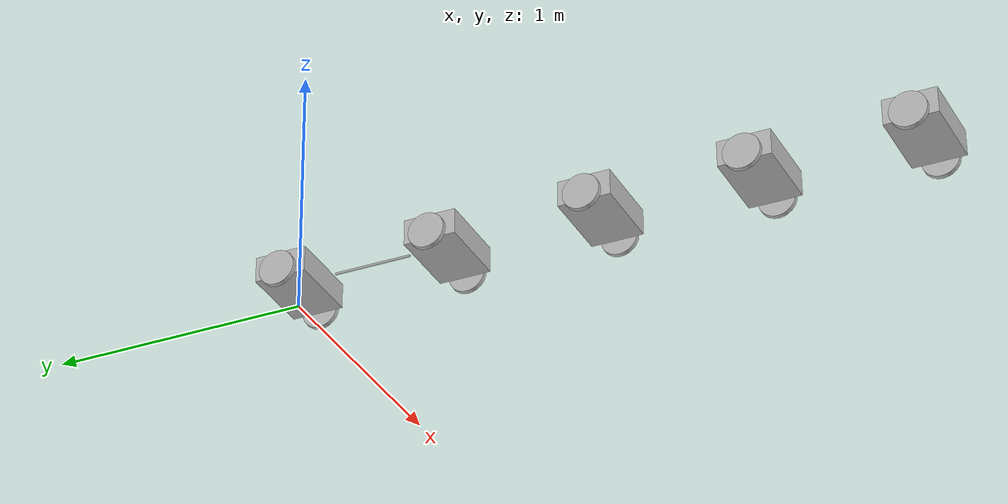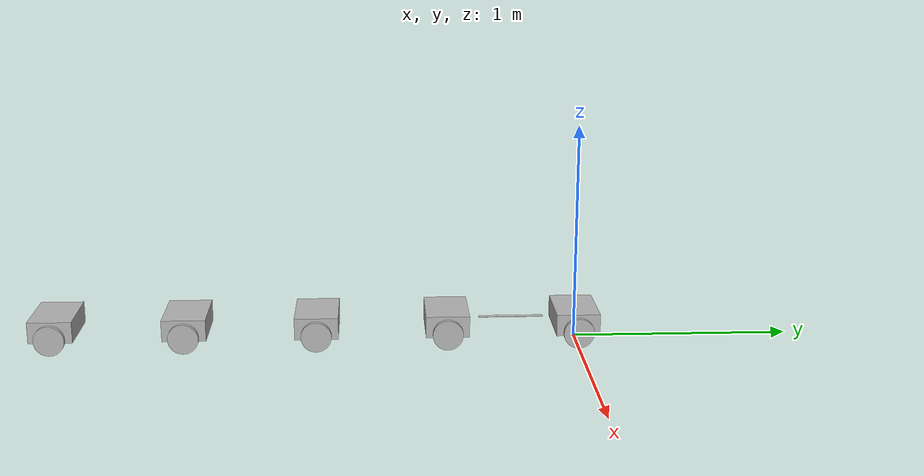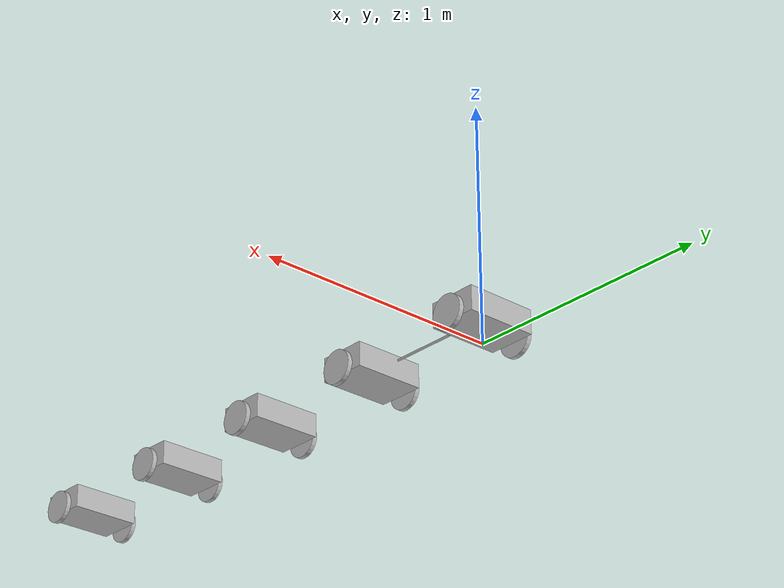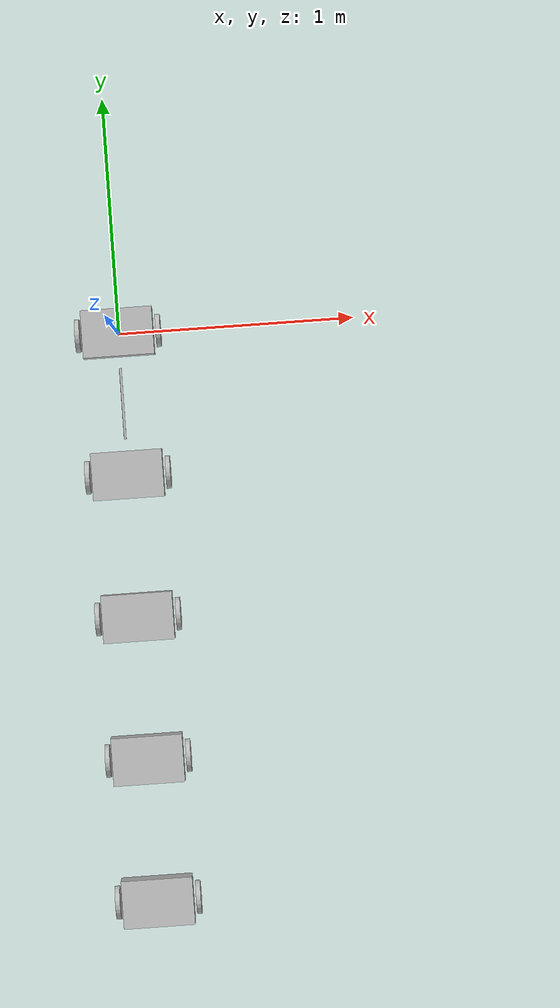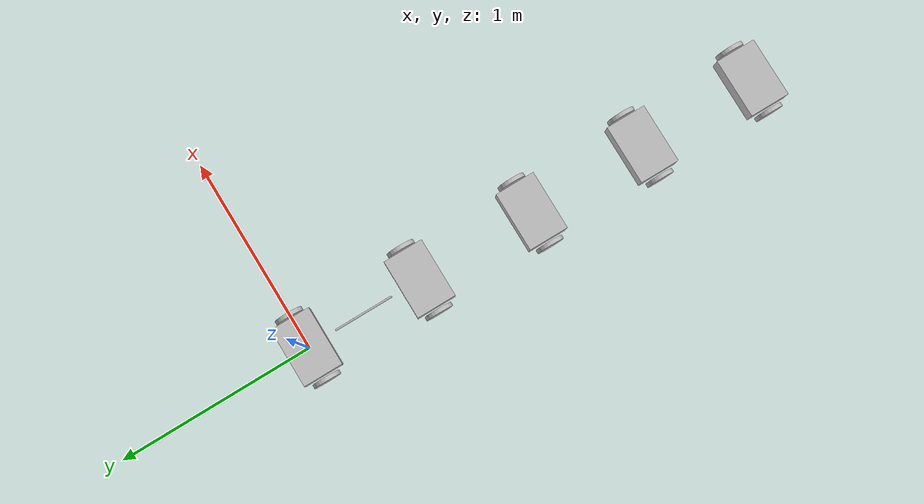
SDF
<?xml version='1.0'?>
   <sdf version='1.4'>
     <model name="train">

       <include>
         <uri>model://carriage</uri>
         <name>car_1</name>
         <pose>0 0 0 0 0 0</pose>
       </include>

       <include>
         <uri>model://carriage</uri>
         <name>car_2</name>
         <pose>0 -0.6 0 0 0 0</pose>
       </include>

       <include>
         <uri>model://carriage</uri>
         <name>car_3</name>
         <pose>0 -1.2 0 0 0 0</pose>
       </include>

       <include>
         <uri>model://carriage</uri>
         <name>car_4</name>
         <pose>0 -1.8 0 0 0 0</pose>
       </include>

       <include>
         <uri>model://carriage</uri>
         <name>car_5</name>
         <pose>0 -2.4 0 0 0 0</pose>
       </include>

       <link name="connection_1">
         <pose> 0 -0.3 0.1 1.5707 0 0 </pose>
          <visual name="visual">
            <geometry>
              <cylinder>
                <radius>0.005</radius>
                <length>0.3</length>
              </cylinder>
            </geometry>
          </visual>
       </link>

       <joint name='car_con_1' type='revolute'>
         <pose>0 0 -0.15 0 -0 0</pose>
         <child>car_1::chassis</child>
         <parent>connection_1</parent>
         <axis>
           <xyz>0 0 1</xyz>
           <use_parent_model_frame>1</use_parent_model_frame>
           <limit>
             <lower>-0.52</lower>
             <upper>0.52</upper>
           </limit>
         </axis>
       </joint>

         <joint name='car_con_2' type='revolute'>
           <pose>0 0 0.15 0 -0 0</pose>
           <child>car_2::chassis</child>
           <parent>connection_1</parent>
           <axis>
             <xyz>0 0 1</xyz>
             <use_parent_model_frame>1</use_parent_model_frame>
           <limit>
             <lower>-0.52</lower>
             <upper>0.52</upper>
           </limit>
         </axis>
         </joint>

    </model>
   </sdf>

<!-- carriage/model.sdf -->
<sdf version='1.4'>
     <model name="carriage">

      <link name='chassis'>
        <pose>0 0 .1 0 0 0</pose>
        <inertial>
          <mass>50</mass>
        </inertial>
        <collision name='collision'>
          <geometry>
            <box>
              <size>.3 .2 .1</size>
            </box>
          </geometry>
        </collision>

        <visual name='visual'>
          <geometry>
            <box>
              <size>.3 .2 .1</size>
            </box>
          </geometry>
        </visual>
      </link>

        <link name="left_wheel">
          <pose>-0.17 0 0.07 0 1.5707 0</pose>
          <inertial>
            <mass>10</mass>
          </inertial>
          <collision name="collision">
            <geometry>
              <cylinder>
                <radius>.07</radius>
                <length>.02</length>
              </cylinder>
            </geometry>
              <surface>
                <friction>
                  <ode>
                    <mu>100000</mu>
                    <mu2>100000</mu2>
                    <slip1>0</slip1>
                    <slip2>0</slip2>
                  </ode>
                </friction>
              </surface>
              <max_contacts>10</max_contacts>
          </collision>
          <visual name="visual">
            <geometry>
              <cylinder>
                <radius>.07</radius>
                <length>.02</length>
              </cylinder>
            </geometry>
          </visual>
        </link>

        <link name="right_wheel">
          <pose>0.17 0 0.07 0 1.5707 0</pose>
          <inertial>
            <mass>10</mass>
          </inertial>
          <collision name="collision">
            <geometry>
              <cylinder>
                <radius>.07</radius>
                <length>.02</length>
              </cylinder>
            </geometry>
              <surface>
                <friction>
                  <ode>
                    <mu>100000</mu>
                    <mu2>100000</mu2>
                    <slip1>0</slip1>
                    <slip2>0</slip2>
                  </ode>
                </friction>
              </surface>
              <max_contacts>10</max_contacts>
          </collision>
          <visual name="visual">
            <geometry>
              <cylinder>
                <radius>.07</radius>
                <length>.02</length>
              </cylinder>
            </geometry>
          </visual>
        </link>

        <joint name='left_wheel_joint' type='revolute'>
          <child>left_wheel</child>
          <parent>chassis</parent>
          <axis>
            <xyz>-1 0 0</xyz>
          </axis>
        </joint>

        <joint name='right_wheel_joint' type='revolute'>
          <child>right_wheel</child>
          <parent>chassis</parent>
          <axis>
            <xyz>-1 0 0</xyz>
          </axis>
        </joint>

    </model>
   </sdf>
